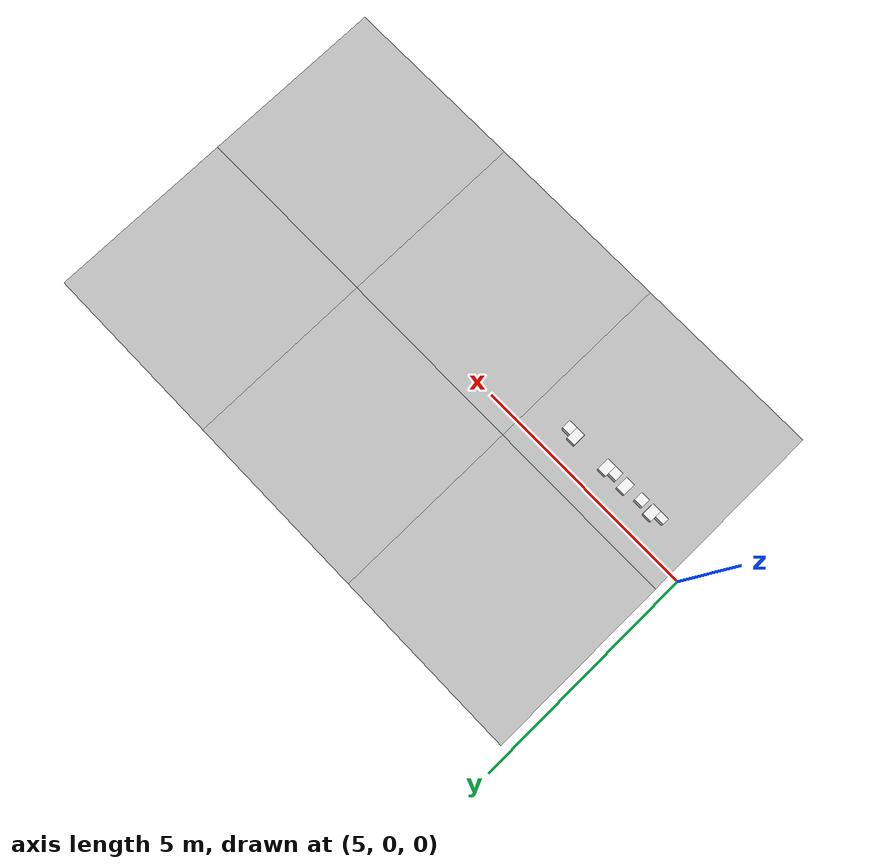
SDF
<sdf version="1.6">
 <world name="default">
  <model name="Tile/2-0">
   <static>1</static>
   <link name="link">
    <collision name="collision">
     <geometry><plane><normal>0 0 1</normal><size>4.096 4.096</size></plane></geometry>
     <surface><friction><ode><mu>100</mu><mu2>50</mu2></ode></friction></surface>
    </collision>
    <visual name="visual">
     <cast_shadows>0</cast_shadows>
     <geometry><plane><normal>0 0 1</normal><size>4.096 4.096</size></plane></geometry>
     <material>
      <script>
       <uri>file://materials/scripts</uri>
       <uri>file://materials/textures</uri>
       <name>Tile/3d3bd5cc858dc23f8cdf700ad7b3081007dcc7643406b5b303805c384e367e84</name>
      </script>
     </material>
    </visual>
   </link>
   <pose>7.24 -1.6520000000000001 0 0 -0 0</pose>
  </model>
  <model name="Tile/2-1">
   <static>1</static>
   <link name="link">
    <collision name="collision">
     <geometry><plane><normal>0 0 1</normal><size>4.096 4.096</size></plane></geometry>
     <surface><friction><ode><mu>100</mu><mu2>50</mu2></ode></friction></surface>
    </collision>
    <visual name="visual">
     <cast_shadows>0</cast_shadows>
     <geometry><plane><normal>0 0 1</normal><size>4.096 4.096</size></plane></geometry>
     <material>
      <script>
       <uri>file://materials/scripts</uri>
       <uri>file://materials/textures</uri>
       <name>Tile/13957a6de1f2afce18d7f1f64dacc2f21295e26ccf498256b0e1a51002cd5706</name>
      </script>
     </material>
    </visual>
   </link>
   <pose>7.24 2.444 0 0 -0 0</pose>
  </model>
  <model name="Tile/3-0">
   <static>1</static>
   <link name="link">
    <collision name="collision">
     <geometry><plane><normal>0 0 1</normal><size>4.096 4.096</size></plane></geometry>
     <surface><friction><ode><mu>100</mu><mu2>50</mu2></ode></friction></surface>
    </collision>
    <visual name="visual">
     <cast_shadows>0</cast_shadows>
     <geometry><plane><normal>0 0 1</normal><size>4.096 4.096</size></plane></geometry>
     <material>
      <script>
       <uri>file://materials/scripts</uri>
       <uri>file://materials/textures</uri>
       <name>Tile/3d26103373765767a585474a76d117ba8a078d7cf1a89f0fa717ca30f8ae6aff</name>
      </script>
     </material>
    </visual>
   </link>
   <pose>11.336 -1.6520000000000001 0 0 -0 0</pose>
  </model>
  <model name="Tile/3-1">
   <static>1</static>
   <link name="link">
    <collision name="collision">
     <geometry><plane><normal>0 0 1</normal><size>4.096 4.096</size></plane></geometry>
     <surface><friction><ode><mu>100</mu><mu2>50</mu2></ode></friction></surface>
    </collision>
    <visual name="visual">
     <cast_shadows>0</cast_shadows>
     <geometry><plane><normal>0 0 1</normal><size>4.096 4.096</size></plane></geometry>
     <material>
      <script>
       <uri>file://materials/scripts</uri>
       <uri>file://materials/textures</uri>
       <name>Tile/49108fcf73c093a64fa29789ebefbb307f0e9f5237999322602a34e6c1fdbf6e</name>
      </script>
     </material>
    </visual>
   </link>
   <pose>11.336 2.444 0 0 -0 0</pose>
  </model>
  <model name="Tile/4-0">
   <static>1</static>
   <link name="link">
    <collision name="collision">
     <geometry><plane><normal>0 0 1</normal><size>4.096 4.096</size></plane></geometry>
     <surface><friction><ode><mu>100</mu><mu2>50</mu2></ode></friction></surface>
    </collision>
    <visual name="visual">
     <cast_shadows>0</cast_shadows>
     <geometry><plane><normal>0 0 1</normal><size>4.096 4.096</size></plane></geometry>
     <material>
      <script>
       <uri>file://materials/scripts</uri>
       <uri>file://materials/textures</uri>
       <name>Tile/5eab350b8220ac9944dbdfa4ac3288c7c17e24c3bf5df0dfcf6173d64dae00a1</name>
      </script>
     </material>
    </visual>
   </link>
   <pose>15.431999999999999 -1.6520000000000001 0 0 -0 0</pose>
  </model>
  <model name="Tile/4-1">
   <static>1</static>
   <link name="link">
    <collision name="collision">
     <geometry><plane><normal>0 0 1</normal><size>4.096 4.096</size></plane></geometry>
     <surface><friction><ode><mu>100</mu><mu2>50</mu2></ode></friction></surface>
    </collision>
    <visual name="visual">
     <cast_shadows>0</cast_shadows>
     <geometry><plane><normal>0 0 1</normal><size>4.096 4.096</size></plane></geometry>
     <material>
      <script>
       <uri>file://materials/scripts</uri>
       <uri>file://materials/textures</uri>
       <name>Tile/5eab350b8220ac9944dbdfa4ac3288c7c17e24c3bf5df0dfcf6173d64dae00a1</name>
      </script>
     </material>
    </visual>
   </link>
   <pose>15.431999999999999 2.444 0 0 -0 0</pose>
  </model>
  <model name="Obstacle/-54/0">
   <pose>6.050000000000002 -0.625 0.1 0 0 -0.0</pose>
   <link name="link">
    <inertial>
     <mass>10</mass>
     <inertia>
      <ixx>0.166667</ixx>
      <ixy>0</ixy>
      <ixz>0</ixz>
      <iyy>0.166667</iyy>
      <iyz>0</iyz>
      <izz>0.166667</izz>
     </inertia>
    </inertial>
    <collision name="collision"><geometry><box><size>0.2 0.15 0.2</size></box></geometry></collision>
    <visual name="visual">
     <geometry><box><size>0.2 0.15 0.2</size></box></geometry>
     <material>
      <script><name>Gazebo/White</name><uri>file://media/materials/scripts/gazebo.material</uri></script>
     </material>
    </visual>
   </link>
  </model>
  <model name="Obstacle/-58/0">
   <pose>6.250000000000002 -0.5599999999999999 0.1 0 0 -0.0</pose>
   <link name="link">
    <inertial>
     <mass>10</mass>
     <inertia>
      <ixx>0.166667</ixx>
      <ixy>0</ixy>
      <ixz>0</ixz>
      <iyy>0.166667</iyy>
      <iyz>0</iyz>
      <izz>0.166667</izz>
     </inertia>
    </inertial>
    <collision name="collision"><geometry><box><size>0.2 0.28 0.2</size></box></geometry></collision>
    <visual name="visual">
     <geometry><box><size>0.2 0.28 0.2</size></box></geometry>
     <material>
      <script><name>Gazebo/White</name><uri>file://media/materials/scripts/gazebo.material</uri></script>
     </material>
    </visual>
   </link>
  </model>
  <model name="Obstacle/-65/0">
   <pose>6.550000000000002 -0.6 0.1 0 0 -0.0</pose>
   <link name="link">
    <inertial>
     <mass>10</mass>
     <inertia>
      <ixx>0.166667</ixx>
      <ixy>0</ixy>
      <ixz>0</ixz>
      <iyy>0.166667</iyy>
      <iyz>0</iyz>
      <izz>0.166667</izz>
     </inertia>
    </inertial>
    <collision name="collision"><geometry><box><size>0.2 0.2 0.2</size></box></geometry></collision>
    <visual name="visual">
     <geometry><box><size>0.2 0.2 0.2</size></box></geometry>
     <material>
      <script><name>Gazebo/White</name><uri>file://media/materials/scripts/gazebo.material</uri></script>
     </material>
    </visual>
   </link>
  </model>
  <model name="Obstacle/-72/0">
   <pose>6.950000000000002 -0.5599999999999999 0.1 0 0 -0.0</pose>
   <link name="link">
    <inertial>
     <mass>10</mass>
     <inertia>
      <ixx>0.166667</ixx>
      <ixy>0</ixy>
      <ixz>0</ixz>
      <iyy>0.166667</iyy>
      <iyz>0</iyz>
      <izz>0.166667</izz>
     </inertia>
    </inertial>
    <collision name="collision"><geometry><box><size>0.2 0.28 0.2</size></box></geometry></collision>
    <visual name="visual">
     <geometry><box><size>0.2 0.28 0.2</size></box></geometry>
     <material>
      <script><name>Gazebo/White</name><uri>file://media/materials/scripts/gazebo.material</uri></script>
     </material>
    </visual>
   </link>
  </model>
  <model name="Obstacle/-79/0">
   <pose>7.250000000000002 -0.6 0.1 0 0 -0.0</pose>
   <link name="link">
    <inertial>
     <mass>10</mass>
     <inertia>
      <ixx>0.166667</ixx>
      <ixy>0</ixy>
      <ixz>0</ixz>
      <iyy>0.166667</iyy>
      <iyz>0</iyz>
      <izz>0.166667</izz>
     </inertia>
    </inertial>
    <collision name="collision"><geometry><box><size>0.2 0.2 0.2</size></box></geometry></collision>
    <visual name="visual">
     <geometry><box><size>0.2 0.2 0.2</size></box></geometry>
     <material>
      <script><name>Gazebo/White</name><uri>file://media/materials/scripts/gazebo.material</uri></script>
     </material>
    </visual>
   </link>
  </model>
  <model name="Obstacle/-83/0">
   <pose>7.450000000000002 -0.5599999999999999 0.1 0 0 -0.0</pose>
   <link name="link">
    <inertial>
     <mass>10</mass>
     <inertia>
      <ixx>0.166667</ixx>
      <ixy>0</ixy>
      <ixz>0</ixz>
      <iyy>0.166667</iyy>
      <iyz>0</iyz>
      <izz>0.166667</izz>
     </inertia>
    </inertial>
    <collision name="collision"><geometry><box><size>0.2 0.28 0.2</size></box></geometry></collision>
    <visual name="visual">
     <geometry><box><size>0.2 0.28 0.2</size></box></geometry>
     <material>
      <script><name>Gazebo/White</name><uri>file://media/materials/scripts/gazebo.material</uri></script>
     </material>
    </visual>
   </link>
  </model>
  <model name="Obstacle/-90/0">
   <pose>8.280000000000003 -0.5599999999999999 0.1 0 0 -0.0</pose>
   <link name="link">
    <inertial>
     <mass>10</mass>
     <inertia>
      <ixx>0.166667</ixx>
      <ixy>0</ixy>
      <ixz>0</ixz>
      <iyy>0.166667</iyy>
      <iyz>0</iyz>
      <izz>0.166667</izz>
     </inertia>
    </inertial>
    <collision name="collision"><geometry><box><size>0.2 0.28 0.2</size></box></geometry></collision>
    <visual name="visual">
     <geometry><box><size>0.2 0.28 0.2</size></box></geometry>
     <material>
      <script><name>Gazebo/White</name><uri>file://media/materials/scripts/gazebo.material</uri></script>
     </material>
    </visual>
   </link>
  </model>
  <model name="Obstacle/-94/0">
   <pose>8.480000000000002 -0.6 0.1 0 0 -0.0</pose>
   <link name="link">
    <inertial>
     <mass>10</mass>
     <inertia>
      <ixx>0.166667</ixx>
      <ixy>0</ixy>
      <ixz>0</ixz>
      <iyy>0.166667</iyy>
      <iyz>0</iyz>
      <izz>0.166667</izz>
     </inertia>
    </inertial>
    <collision name="collision"><geometry><box><size>0.2 0.2 0.2</size></box></geometry></collision>
    <visual name="visual">
     <geometry><box><size>0.2 0.2 0.2</size></box></geometry>
     <material>
      <script><name>Gazebo/White</name><uri>file://media/materials/scripts/gazebo.material</uri></script>
     </material>
    </visual>
   </link>
  </model>
 </world>
</sdf>
